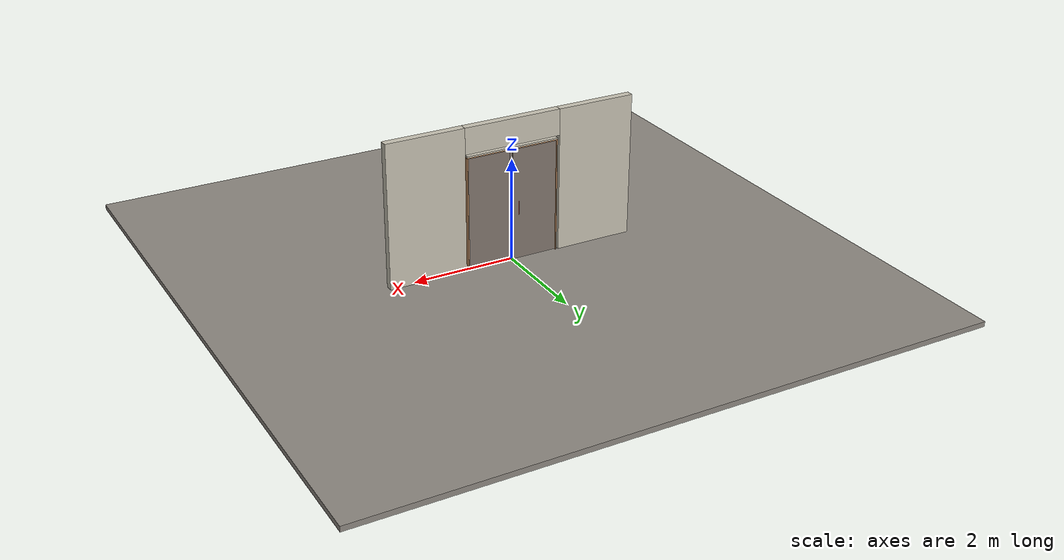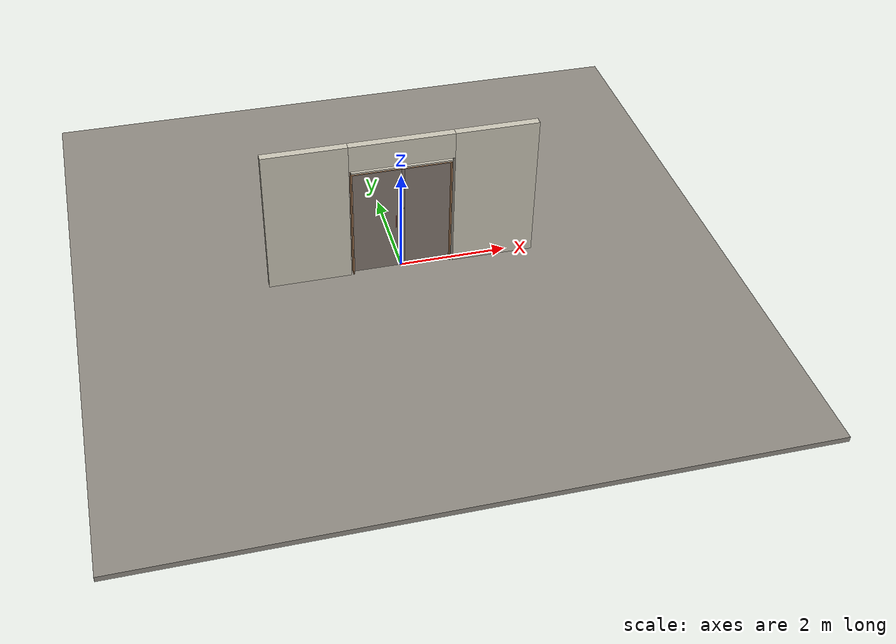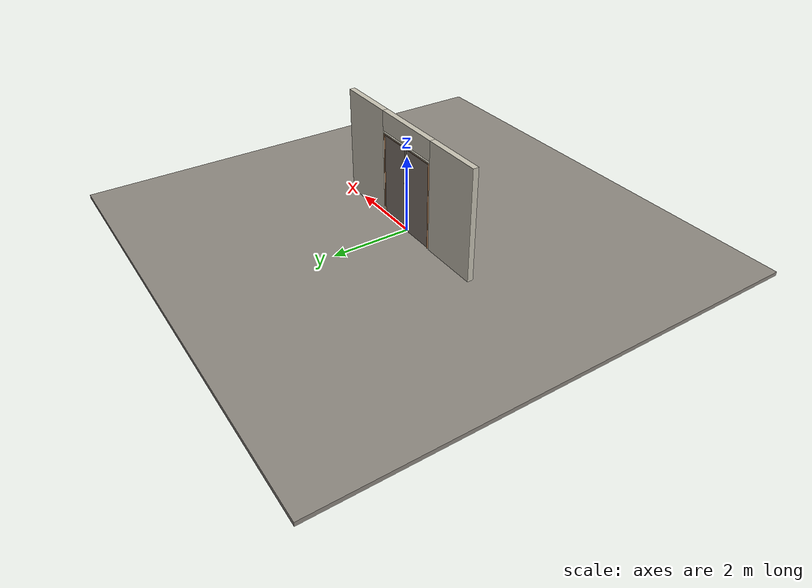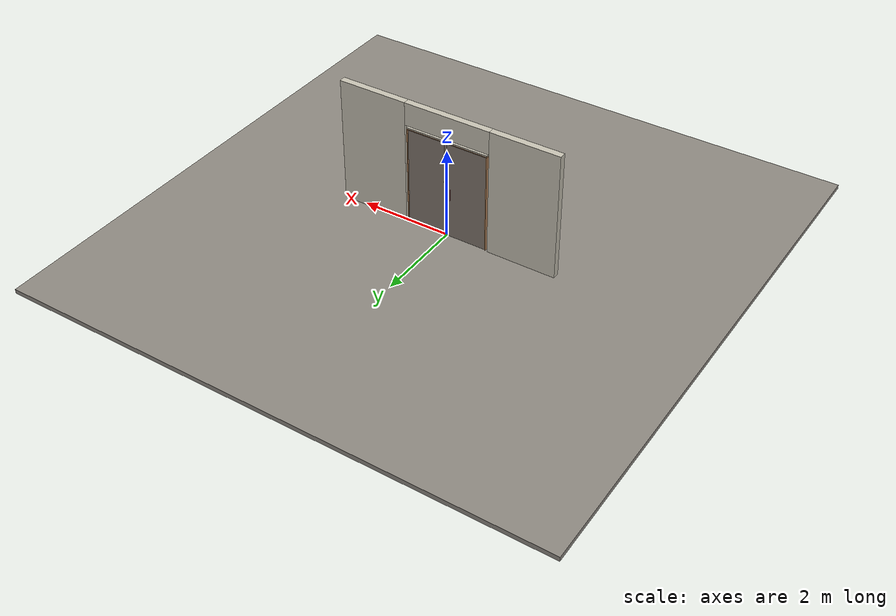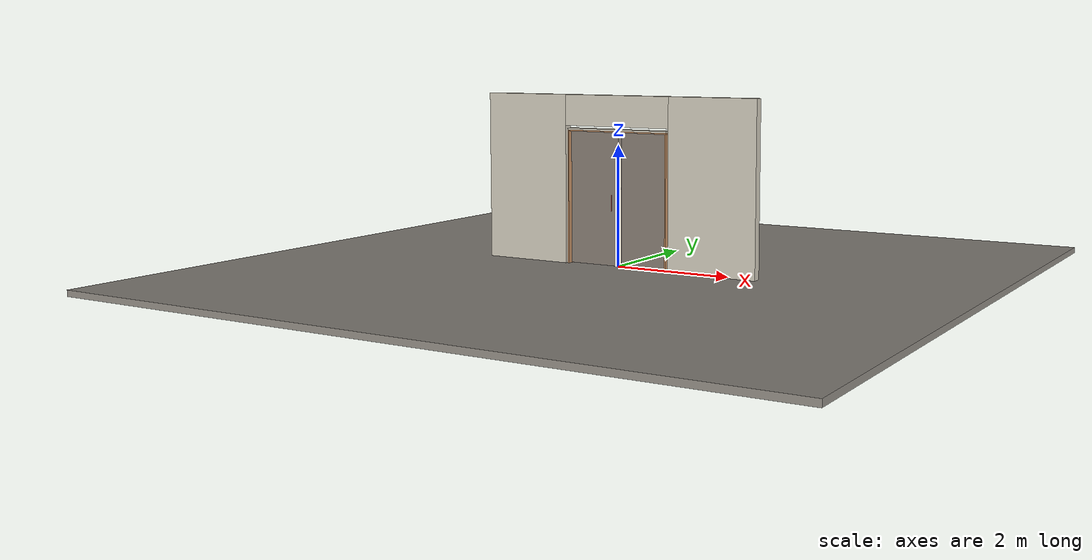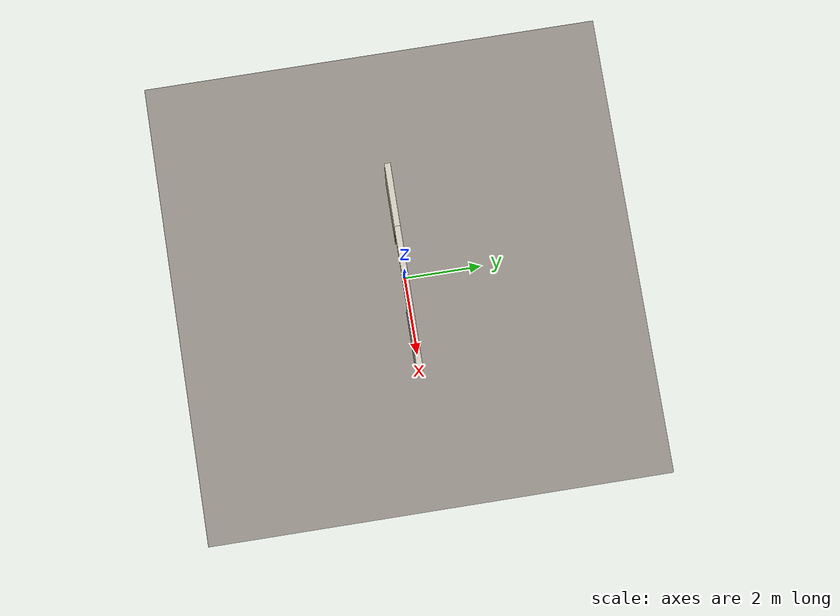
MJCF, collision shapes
<?xml version="1.0" ?>
<mujoco model="db0127_swing_double_minimal">
  <compiler angle="radian" meshdir="../../hardware" texturedir="../../textures" autolimits="true" inertiafromgeom="false"/>
  <option timestep="0.002" integrator="implicitfast" cone="elliptic" impratio="10" noslip_iterations="3">
    <flag multiccd="enable"/>
  </option>
  <size memory="16M"/>
  <default>
    <geom condim="4" solref="0.005 1" solimp="0.95 0.99 0.001"/>
    <joint solreflimit="0.005 1" solimplimit="0.95 0.99 0.001"/>
    <tendon solreflimit="0.005 1"/>
    <equality solref="0.002 1"/>
  </default>
  <visual>
    <headlight ambient="0.4 0.4 0.4" diffuse="0.7 0.7 0.7" specular="0.2 0.2 0.2"/>
    <quality shadowsize="4096"/>
    <map znear="0.01" zfar="60"/>
  </visual>
  <asset>
    <mesh name="pull_2b47e55ff8" file="pull_2b47e55ff8.obj"/>
    <material name="mat_floor" rgba="0.55 0.53 0.5 1" specular="0.2" shininess="0.15" reflectance="0"/>
    <material name="mat_wall" rgba="0.78 0.76 0.7 1" specular="0.2" shininess="0.1" reflectance="0"/>
    <material name="mat_leaf_a" rgba="0.5 0.46 0.425 1" specular="0.2" shininess="0.15" reflectance="0"/>
    <material name="mat_leaf_a_brace" rgba="0.45 0.414 0.383 1" specular="0.2" shininess="0.2" reflectance="0"/>
    <material name="mat_hinge" rgba="0.65 0.66 0.68 1" specular="0.74" shininess="0.5" reflectance="0.36"/>
    <material name="mat_op_black_matte_metal" rgba="0.05 0.05 0.05 1" specular="0.38" shininess="0.3" reflectance="0.12"/>
    <material name="mat_op_brass" rgba="0.85 0.66 0.3 1" specular="0.8" shininess="0.75" reflectance="0.4"/>
    <material name="mat_leaf_b" rgba="0.5 0.46 0.425 1" specular="0.2" shininess="0.15" reflectance="0"/>
    <material name="mat_leaf_b_brace" rgba="0.45 0.414 0.383 1" specular="0.2" shininess="0.2" reflectance="0"/>
    <material name="mat_frame" rgba="0.75 0.55 0.38 1" specular="0.2" shininess="0.45" reflectance="0"/>
    <texture name="skybox" type="skybox" builtin="gradient" rgb1="0.6 0.7 0.85" rgb2="0.9 0.92 0.95" width="256" height="256"/>
  </asset>
  <worldbody>
    <light name="sun" pos="1.5 -2.5 4" dir="-0.3 0.5 -0.8" directional="true" diffuse="0.8 0.8 0.8" specular="0.3 0.3 0.3" castshadow="true"/>
    <light name="fill" pos="-1.5 2.5 3" dir="0.3 -0.5 -0.7" directional="true" diffuse="0.35 0.35 0.4" castshadow="false"/>
    <camera name="robot_view" pos="0 -2.730187 1.862413" xyaxes="1 0 0 0 0.26963 0.962964" fovy="52"/>
    <camera name="far_view" pos="0 2.669187 1.862413" xyaxes="-1 0 0 0 -0.26963 0.962964" fovy="52"/>
    <camera name="iso" pos="-2.051762 -2.298237 2.294363" xyaxes="0.741536 -0.670913 0 0.242917 0.268487 0.932151" fovy="46"/>
    <camera name="detail_handle" pos="0.0735 -0.867 1.33" xyaxes="0.97561 0.219512 0 -0.070934 0.315262 0.94635" fovy="38"/>
    <geom name="floor" type="box" size="6 6 0.05" pos="0 0 -0.05" material="mat_floor" group="0" contype="1" conaffinity="1" friction="0.8 0.005 0.0001" density="2400"/>
    <geom name="wall_left" type="box" size="0.76775 0.0725 1.4065" pos="-1.73225 -0.0305 1.4065" material="mat_wall" group="0" contype="1" conaffinity="1" friction="0.6 0.005 0.0001" density="800"/>
    <geom name="wall_right" type="box" size="0.76775 0.0725 1.4065" pos="1.73225 -0.0305 1.4065" material="mat_wall" group="0" contype="1" conaffinity="1" friction="0.6 0.005 0.0001" density="800"/>
    <geom name="wall_header" type="box" size="0.9645 0.0725 0.255" pos="0 -0.0305 2.558" material="mat_wall" group="0" contype="1" conaffinity="1" friction="0.6 0.005 0.0001" density="800"/>
    <geom name="jamb_l" type="box" size="0.0095 0.0725 1.1065" pos="-0.914 -0.0305 1.1065" material="mat_frame" group="0" contype="1" conaffinity="1" friction="0.6 0.005 0.0001" density="300"/>
    <geom name="jamb_r" type="box" size="0.0095 0.0725 1.1065" pos="0.914 -0.0305 1.1065" material="mat_frame" group="0" contype="1" conaffinity="1" friction="0.6 0.005 0.0001" density="300"/>
    <geom name="jamb_head" type="box" size="0.9235 0.0725 0.0095" pos="0 -0.0305 2.2225" material="mat_frame" group="0" contype="1" conaffinity="1" friction="0.6 0.005 0.0001" density="300"/>
    <geom name="head_stud" type="box" size="0.9235 0.0725 0.015" pos="0 -0.0305 2.247" material="mat_wall" group="0" contype="1" conaffinity="1" friction="0.6 0.005 0.0001" density="500"/>
    <site name="approach_point" pos="0 -1.5 0" quat="1 0 0 0" size="0.05" rgba="0.2 0.9 0.2 0.5" group="4"/>
    <site name="goal_point" pos="0 1.5 0" quat="1 0 0 0" size="0.05" rgba="0.2 0.9 0.2 0.5" group="4"/>
    <site name="door_plane_center" pos="0 0 1.1065" quat="1 0 0 0" size="0.02" rgba="0.2 0.9 0.2 0.5" group="4"/>
    <site name="approach_point_2" pos="0 -1.5 0" quat="1 0 0 0" size="0.05" rgba="0.2 0.9 0.2 0.5" group="4"/>
    <site name="goal_point_2" pos="0 1.5 0" quat="1 0 0 0" size="0.05" rgba="0.2 0.9 0.2 0.5" group="4"/>
    <site name="door_plane_center_2" pos="0 0 1.1065" quat="1 0 0 0" size="0.02" rgba="0.2 0.9 0.2 0.5" group="4"/>
    <site name="approach_point_3" pos="0 -1.5 0" quat="1 0 0 0" size="0.05" rgba="0.2 0.9 0.2 0.5" group="4"/>
    <site name="goal_point_3" pos="0 1.5 0" quat="1 0 0 0" size="0.05" rgba="0.2 0.9 0.2 0.5" group="4"/>
    <site name="door_plane_center_3" pos="0 0 1.1065" quat="1 0 0 0" size="0.02" rgba="0.2 0.9 0.2 0.5" group="4"/>
    <body name="leaf_a" pos="-0.9045 0 0">
      <inertial pos="0.460965 0 1.107638" mass="43.845143" quat="0.500352 0.500352 0.499648 -0.499648" diaginertia="3.019595971 17.300682113 20.299017628"/>
      <joint name="leaf_a_hinge" type="hinge" axis="0 0 1" pos="0.003 0.029 0" limited="true" range="0 1.396263" damping="0.310682" frictionloss="6.283328" armature="0.02"/>
      <geom name="leaf_a_slab" type="box" size="0.45 0.022 1.1" pos="0.453 0 1.109" material="mat_leaf_a" group="0" contype="1" conaffinity="1" friction="0.45 0.005 0.0001" density="1"/>
      <geom name="leaf_a_pull_n" type="mesh" mesh="pull_2b47e55ff8" pos="0.798 -0.022 1.05" quat="0.707107 0.707107 0 0" material="mat_op_black_matte_metal" group="1" contype="0" conaffinity="0" density="3000"/>
      <geom name="leaf_a_pull_col_n" type="capsule" size="0.006 0.13" pos="0.798 -0.067 1.05" material="mat_op_black_matte_metal" group="3" contype="1" conaffinity="1" rgba="0.8 0.3 0.3 0.25" friction="0.7 0.01 0.0001" density="3000"/>
      <geom name="leaf_a_pull_p" type="mesh" mesh="pull_2b47e55ff8" pos="0.798 0.022 1.05" quat="-0.707107 0.707107 0 0" material="mat_op_black_matte_metal" group="1" contype="0" conaffinity="0" density="3000"/>
      <geom name="leaf_a_pull_col_p" type="capsule" size="0.006 0.13" pos="0.798 0.067 1.05" material="mat_op_black_matte_metal" group="3" contype="1" conaffinity="1" rgba="0.8 0.3 0.3 0.25" friction="0.7 0.01 0.0001" density="3000"/>
      <site name="leaf_a_pull_grip_n" pos="0.798 -0.067 1.05" quat="1 0 0 0" size="0.012" rgba="0.2 0.9 0.2 0.5" group="4"/>
      <site name="leaf_a_pull_grip_p" pos="0.798 0.067 1.05" quat="1 0 0 0" size="0.012" rgba="0.2 0.9 0.2 0.5" group="4"/>
      <site name="leaf_a_edge_mid" pos="0.903 0 1.1" quat="1 0 0 0" size="0.02" rgba="0.2 0.9 0.2 0.5" group="4"/>
    </body>
    <body name="leaf_b" pos="0.9045 0 0">
      <inertial pos="-0.423063 0 1.109" mass="43.578273" quat="0.5 0.5 0.5 -0.5" diaginertia="2.570306673 17.583594685 20.139840065"/>
      <joint name="leaf_b_hinge" type="hinge" axis="0 0 -1" pos="-0.003 0.029 0" limited="true" range="0 0.001" damping="0.310682" frictionloss="6.283328" armature="0.02"/>
      <geom name="leaf_b_edge_1300_wall_n" type="box" size="0.03 0.024 0.01" pos="-0.873 0.002 1.3" material="mat_leaf_b" group="0" contype="1" conaffinity="1" friction="0.6 0.005 0.0001" density="1"/>
      <geom name="leaf_b_edge_1300_wall_p" type="box" size="0.022 0.003 0.01" pos="-0.881 0.045 1.3" material="mat_leaf_b" group="0" contype="1" conaffinity="1" friction="0.6 0.005 0.0001" density="1"/>
      <geom name="leaf_b_edge_1300_back" type="box" size="0.009 0.008 0.01" pos="-0.852 0.034 1.3" material="mat_leaf_b" group="0" contype="1" conaffinity="1" friction="0.6 0.005 0.0001" density="1"/>
      <geom name="leaf_b_edge_seg_0" type="box" size="0.03 0.022 0.6405" pos="-0.873 0 0.6495" material="mat_leaf_b" group="0" contype="1" conaffinity="1" friction="0.6 0.005 0.0001" density="1"/>
      <geom name="leaf_b_edge_seg_1" type="box" size="0.03 0.022 0.4495" pos="-0.873 0 1.7595" material="mat_leaf_b" group="0" contype="1" conaffinity="1" friction="0.6 0.005 0.0001" density="1"/>
      <geom name="leaf_b_slab" type="box" size="0.42 0.022 1.1" pos="-0.423 0 1.109" material="mat_leaf_b" group="0" contype="1" conaffinity="1" friction="0.45 0.005 0.0001" density="1"/>
      <site name="leaf_b_edge_mid" pos="-0.903 0 1.1" quat="1 0 0 0" size="0.02" rgba="0.2 0.9 0.2 0.5" group="4"/>
    </body>
  </worldbody>
  <sensor>
    <jointpos name="leaf_a_hinge_pos" joint="leaf_a_hinge"/>
    <jointvel name="leaf_a_hinge_vel" joint="leaf_a_hinge"/>
    <jointpos name="leaf_b_hinge_pos" joint="leaf_b_hinge"/>
    <jointvel name="leaf_b_hinge_vel" joint="leaf_b_hinge"/>
  </sensor>
</mujoco>
